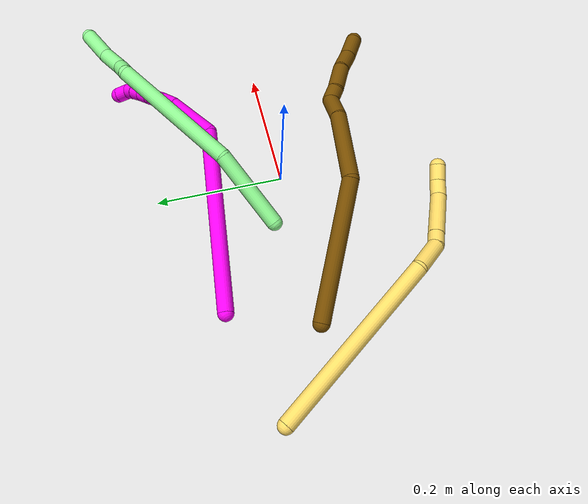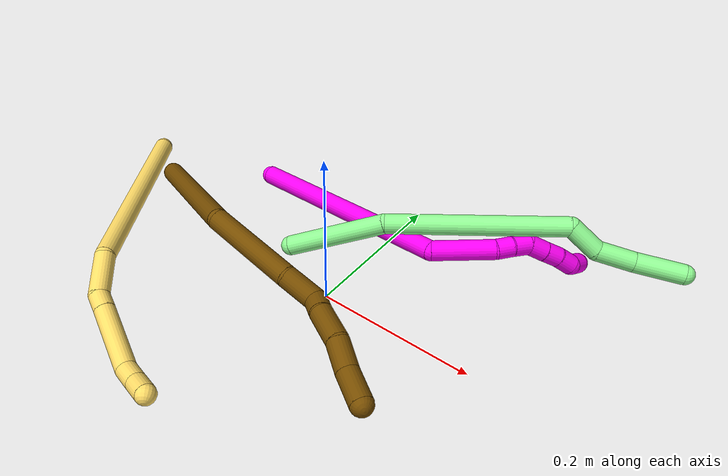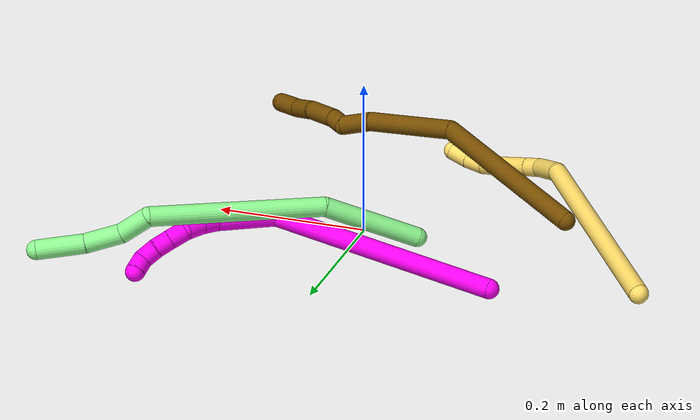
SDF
<sdf version="1.7">
 <world name="default">
  <model name="5">
   <static>0</static>
   <link name="5">
    <collision name="collision-cylinder-e_1_1_4">
     <pose>0.013832 -0.050678 0.135735 0.357334 0.095179 0.017201</pose>
     <geometry><cylinder><radius>0.0125</radius><length>0.291092</length></cylinder></geometry>
     <surface>
      <friction><ode><mu>1.16</mu><mu2>1.16</mu2><slip1>0</slip1><slip2>0</slip2></ode></friction>
      <contact><ode><kp>1e+06</kp><kd>1</kd><max_vel>0</max_vel><min_depth>0.001</min_depth></ode></contact>
     </surface>
    </collision>
    <visual name="visual-cylinder-e_1_1_4">
     <pose>0.013832 -0.050678 0.135735 0.357334 0.095179 0.017201</pose>
     <geometry><cylinder><radius>0.0125</radius><length>0.291092</length></cylinder></geometry>
     <material><ambient>1 0.858824 0.4 1</ambient></material>
    </visual>
    <collision name="collision-cylinder-e_2_4_5">
     <pose>0.026048 -0.100336 0.298481 -0.037768 -0.059733 0.001128</pose>
     <geometry><cylinder><radius>0.0125</radius><length>0.054156</length></cylinder></geometry>
     <surface>
      <friction><ode><mu>1.16</mu><mu2>1.16</mu2><slip1>0</slip1><slip2>0</slip2></ode></friction>
      <contact><ode><kp>1e+06</kp><kd>1</kd><max_vel>0</max_vel><min_depth>0.001</min_depth></ode></contact>
     </surface>
    </collision>
    <visual name="visual-cylinder-e_2_4_5">
     <pose>0.026048 -0.100336 0.298481 -0.037768 -0.059733 0.001128</pose>
     <geometry><cylinder><radius>0.0125</radius><length>0.054156</length></cylinder></geometry>
     <material><ambient>1 0.858824 0.4 1</ambient></material>
    </visual>
    <collision name="collision-cylinder-e_3_5_6">
     <pose>0.019443 -0.099812 0.334869 0.052929 -0.488231 -0.013187</pose>
     <geometry><cylinder><radius>0.0125</radius><length>0.021268</length></cylinder></geometry>
     <surface>
      <friction><ode><mu>1.16</mu><mu2>1.16</mu2><slip1>0</slip1><slip2>0</slip2></ode></friction>
      <contact><ode><kp>1e+06</kp><kd>1</kd><max_vel>0</max_vel><min_depth>0.001</min_depth></ode></contact>
     </surface>
    </collision>
    <visual name="visual-cylinder-e_3_5_6">
     <pose>0.019443 -0.099812 0.334869 0.052929 -0.488231 -0.013187</pose>
     <geometry><cylinder><radius>0.0125</radius><length>0.021268</length></cylinder></geometry>
     <material><ambient>1 0.858824 0.4 1</ambient></material>
    </visual>
    <collision name="collision-cylinder-e_4_6_7">
     <pose>-0.004059 -0.101163 0.380383 0.023634 -0.473371 -0.005701</pose>
     <geometry><cylinder><radius>0.0125</radius><length>0.081223</length></cylinder></geometry>
     <surface>
      <friction><ode><mu>1.16</mu><mu2>1.16</mu2><slip1>0</slip1><slip2>0</slip2></ode></friction>
      <contact><ode><kp>1e+06</kp><kd>1</kd><max_vel>0</max_vel><min_depth>0.001</min_depth></ode></contact>
     </surface>
    </collision>
    <visual name="visual-cylinder-e_4_6_7">
     <pose>-0.004059 -0.101163 0.380383 0.023634 -0.473371 -0.005701</pose>
     <geometry><cylinder><radius>0.0125</radius><length>0.081223</length></cylinder></geometry>
     <material><ambient>1 0.858824 0.4 1</ambient></material>
    </visual>
    <collision name="collision-cylinder-e_5_7_8">
     <pose>-0.029756 -0.107051 0.426151 0.481575 -0.583994 -0.147353</pose>
     <geometry><cylinder><radius>0.0125</radius><length>0.026055</length></cylinder></geometry>
     <surface>
      <friction><ode><mu>1.16</mu><mu2>1.16</mu2><slip1>0</slip1><slip2>0</slip2></ode></friction>
      <contact><ode><kp>1e+06</kp><kd>1</kd><max_vel>0</max_vel><min_depth>0.001</min_depth></ode></contact>
     </surface>
    </collision>
    <visual name="visual-cylinder-e_5_7_8">
     <pose>-0.029756 -0.107051 0.426151 0.481575 -0.583994 -0.147353</pose>
     <geometry><cylinder><radius>0.0125</radius><length>0.026055</length></cylinder></geometry>
     <material><ambient>1 0.858824 0.4 1</ambient></material>
    </visual>
    <collision name="collision-cylinder-e_6_8_2">
     <pose>-0.043441 -0.118714 0.445029 0.621993 -0.519257 -0.170344</pose>
     <geometry><cylinder><radius>0.0125</radius><length>0.026206</length></cylinder></geometry>
     <surface>
      <friction><ode><mu>1.16</mu><mu2>1.16</mu2><slip1>0</slip1><slip2>0</slip2></ode></friction>
      <contact><ode><kp>1e+06</kp><kd>1</kd><max_vel>0</max_vel><min_depth>0.001</min_depth></ode></contact>
     </surface>
    </collision>
    <visual name="visual-cylinder-e_6_8_2">
     <pose>-0.043441 -0.118714 0.445029 0.621993 -0.519257 -0.170344</pose>
     <geometry><cylinder><radius>0.0125</radius><length>0.026206</length></cylinder></geometry>
     <material><ambient>1 0.858824 0.4 1</ambient></material>
    </visual>
    <collision name="collision-sphere-2">
     <pose>-0.049944 -0.125342 0.454274 0 -0 0</pose>
     <geometry><sphere><radius>0.0125</radius></sphere></geometry>
     <surface>
      <friction><ode><mu>1.16</mu><mu2>1.16</mu2><slip1>0</slip1><slip2>0</slip2></ode></friction>
      <contact><ode><kp>1e+06</kp><kd>1</kd><max_vel>0</max_vel><min_depth>0.001</min_depth></ode></contact>
     </surface>
    </collision>
    <visual name="visual-sphere-2">
     <pose>-0.049944 -0.125342 0.454274 0 -0 0</pose>
     <geometry><sphere><radius>0.0125</radius></sphere></geometry>
     <material><ambient>1 0.858824 0.4 1</ambient></material>
    </visual>
    <collision name="collision-sphere-4">
     <pose>0.027664 -0.101357 0.27147 0 -0 0</pose>
     <geometry><sphere><radius>0.0125</radius></sphere></geometry>
     <surface>
      <friction><ode><mu>1.16</mu><mu2>1.16</mu2><slip1>0</slip1><slip2>0</slip2></ode></friction>
      <contact><ode><kp>1e+06</kp><kd>1</kd><max_vel>0</max_vel><min_depth>0.001</min_depth></ode></contact>
     </surface>
    </collision>
    <visual name="visual-sphere-4">
     <pose>0.027664 -0.101357 0.27147 0 -0 0</pose>
     <geometry><sphere><radius>0.0125</radius></sphere></geometry>
     <material><ambient>1 0.858824 0.4 1</ambient></material>
    </visual>
    <collision name="collision-sphere-1">
     <geometry><sphere><radius>0.0125</radius></sphere></geometry>
     <surface>
      <friction><ode><mu>1.16</mu><mu2>1.16</mu2><slip1>0</slip1><slip2>0</slip2></ode></friction>
      <contact><ode><kp>1e+06</kp><kd>1</kd><max_vel>0</max_vel><min_depth>0.001</min_depth></ode></contact>
     </surface>
    </collision>
    <visual name="visual-sphere-1">
     <geometry><sphere><radius>0.0125</radius></sphere></geometry>
     <material><ambient>1 0.858824 0.4 1</ambient></material>
    </visual>
    <collision name="collision-sphere-8">
     <pose>-0.036939 -0.112085 0.435783 0 -0 0</pose>
     <geometry><sphere><radius>0.0125</radius></sphere></geometry>
     <surface>
      <friction><ode><mu>1.16</mu><mu2>1.16</mu2><slip1>0</slip1><slip2>0</slip2></ode></friction>
      <contact><ode><kp>1e+06</kp><kd>1</kd><max_vel>0</max_vel><min_depth>0.001</min_depth></ode></contact>
     </surface>
    </collision>
    <visual name="visual-sphere-8">
     <pose>-0.036939 -0.112085 0.435783 0 -0 0</pose>
     <geometry><sphere><radius>0.0125</radius></sphere></geometry>
     <material><ambient>1 0.858824 0.4 1</ambient></material>
    </visual>
    <collision name="collision-sphere-5">
     <pose>0.024431 -0.099315 0.325491 0 -0 0</pose>
     <geometry><sphere><radius>0.0125</radius></sphere></geometry>
     <surface>
      <friction><ode><mu>1.16</mu><mu2>1.16</mu2><slip1>0</slip1><slip2>0</slip2></ode></friction>
      <contact><ode><kp>1e+06</kp><kd>1</kd><max_vel>0</max_vel><min_depth>0.001</min_depth></ode></contact>
     </surface>
    </collision>
    <visual name="visual-sphere-5">
     <pose>0.024431 -0.099315 0.325491 0 -0 0</pose>
     <geometry><sphere><radius>0.0125</radius></sphere></geometry>
     <material><ambient>1 0.858824 0.4 1</ambient></material>
    </visual>
    <collision name="collision-sphere-6">
     <pose>0.014455 -0.100309 0.344248 0 -0 0</pose>
     <geometry><sphere><radius>0.0125</radius></sphere></geometry>
     <surface>
      <friction><ode><mu>1.16</mu><mu2>1.16</mu2><slip1>0</slip1><slip2>0</slip2></ode></friction>
      <contact><ode><kp>1e+06</kp><kd>1</kd><max_vel>0</max_vel><min_depth>0.001</min_depth></ode></contact>
     </surface>
    </collision>
    <visual name="visual-sphere-6">
     <pose>0.014455 -0.100309 0.344248 0 -0 0</pose>
     <geometry><sphere><radius>0.0125</radius></sphere></geometry>
     <material><ambient>1 0.858824 0.4 1</ambient></material>
    </visual>
    <collision name="collision-sphere-7">
     <pose>-0.022574 -0.102018 0.416519 0 -0 0</pose>
     <geometry><sphere><radius>0.0125</radius></sphere></geometry>
     <surface>
      <friction><ode><mu>1.16</mu><mu2>1.16</mu2><slip1>0</slip1><slip2>0</slip2></ode></friction>
      <contact><ode><kp>1e+06</kp><kd>1</kd><max_vel>0</max_vel><min_depth>0.001</min_depth></ode></contact>
     </surface>
    </collision>
    <visual name="visual-sphere-7">
     <pose>-0.022574 -0.102018 0.416519 0 -0 0</pose>
     <geometry><sphere><radius>0.0125</radius></sphere></geometry>
     <material><ambient>1 0.858824 0.4 1</ambient></material>
    </visual>
    <inertial>
     <pose>0.007214 -0.072851 0.232919 0 -0 0</pose>
     <mass>0.5</mass>
     <inertia>
      <ixx>0.002151</ixx>
      <ixy>0</ixy>
      <ixz>0</ixz>
      <iyy>0.002031</iyy>
      <iyz>0</iyz>
      <izz>0.000588</izz>
     </inertia>
    </inertial>
   </link>
   <pose>-0.381298 0.086872 0.011658 -1.80239 -0.169087 -2.46111</pose>
  </model>
  <model name="10">
   <static>0</static>
   <link name="10">
    <collision name="collision-cylinder-e_1_1_4">
     <pose>-0.051281 -0.03476 0.133468 0.254779 -0.355977 -0.046074</pose>
     <geometry><cylinder><radius>0.0125</radius><length>0.29429</length></cylinder></geometry>
     <surface>
      <friction><ode><mu>1.16</mu><mu2>1.16</mu2><slip1>0</slip1><slip2>0</slip2></ode></friction>
      <contact><ode><kp>1e+06</kp><kd>1</kd><max_vel>0</max_vel><min_depth>0.001</min_depth></ode></contact>
     </surface>
    </collision>
    <visual name="visual-cylinder-e_1_1_4">
     <pose>-0.051281 -0.03476 0.133468 0.254779 -0.355977 -0.046074</pose>
     <geometry><cylinder><radius>0.0125</radius><length>0.29429</length></cylinder></geometry>
     <material><ambient>1 0 0.964706 1</ambient></material>
    </visual>
    <collision name="collision-cylinder-e_2_4_5">
     <pose>-0.107672 -0.051324 0.300692 -0.494389 -0.132482 0.033478</pose>
     <geometry><cylinder><radius>0.0125</radius><length>0.077375</length></cylinder></geometry>
     <surface>
      <friction><ode><mu>1.16</mu><mu2>1.16</mu2><slip1>0</slip1><slip2>0</slip2></ode></friction>
      <contact><ode><kp>1e+06</kp><kd>1</kd><max_vel>0</max_vel><min_depth>0.001</min_depth></ode></contact>
     </surface>
    </collision>
    <visual name="visual-cylinder-e_2_4_5">
     <pose>-0.107672 -0.051324 0.300692 -0.494389 -0.132482 0.033478</pose>
     <geometry><cylinder><radius>0.0125</radius><length>0.077375</length></cylinder></geometry>
     <material><ambient>1 0 0.964706 1</ambient></material>
    </visual>
    <collision name="collision-cylinder-e_3_5_6">
     <pose>-0.113274 -0.026139 0.342199 -0.733767 -0.047047 0.018082</pose>
     <geometry><cylinder><radius>0.0125</radius><length>0.020895</length></cylinder></geometry>
     <surface>
      <friction><ode><mu>1.16</mu><mu2>1.16</mu2><slip1>0</slip1><slip2>0</slip2></ode></friction>
      <contact><ode><kp>1e+06</kp><kd>1</kd><max_vel>0</max_vel><min_depth>0.001</min_depth></ode></contact>
     </surface>
    </collision>
    <visual name="visual-cylinder-e_3_5_6">
     <pose>-0.113274 -0.026139 0.342199 -0.733767 -0.047047 0.018082</pose>
     <geometry><cylinder><radius>0.0125</radius><length>0.020895</length></cylinder></geometry>
     <material><ambient>1 0 0.964706 1</ambient></material>
    </visual>
    <collision name="collision-cylinder-e_4_6_7">
     <pose>-0.112895 -0.011446 0.357915 -0.768696 0.078358 -0.031706</pose>
     <geometry><cylinder><radius>0.0125</radius><length>0.022233</length></cylinder></geometry>
     <surface>
      <friction><ode><mu>1.16</mu><mu2>1.16</mu2><slip1>0</slip1><slip2>0</slip2></ode></friction>
      <contact><ode><kp>1e+06</kp><kd>1</kd><max_vel>0</max_vel><min_depth>0.001</min_depth></ode></contact>
     </surface>
    </collision>
    <visual name="visual-cylinder-e_4_6_7">
     <pose>-0.112895 -0.011446 0.357915 -0.768696 0.078358 -0.031706</pose>
     <geometry><cylinder><radius>0.0125</radius><length>0.022233</length></cylinder></geometry>
     <material><ambient>1 0 0.964706 1</ambient></material>
    </visual>
    <collision name="collision-cylinder-e_5_7_8">
     <pose>-0.108065 -0.000316 0.375837 -0.331427 0.359746 -0.060805</pose>
     <geometry><cylinder><radius>0.0125</radius><length>0.022497</length></cylinder></geometry>
     <surface>
      <friction><ode><mu>1.16</mu><mu2>1.16</mu2><slip1>0</slip1><slip2>0</slip2></ode></friction>
      <contact><ode><kp>1e+06</kp><kd>1</kd><max_vel>0</max_vel><min_depth>0.001</min_depth></ode></contact>
     </surface>
    </collision>
    <visual name="visual-cylinder-e_5_7_8">
     <pose>-0.108065 -0.000316 0.375837 -0.331427 0.359746 -0.060805</pose>
     <geometry><cylinder><radius>0.0125</radius><length>0.022497</length></cylinder></geometry>
     <material><ambient>1 0 0.964706 1</ambient></material>
    </visual>
    <collision name="collision-cylinder-e_6_8_9">
     <pose>-0.100305 0.006721 0.394635 -0.387668 0.378667 -0.075198</pose>
     <geometry><cylinder><radius>0.0125</radius><length>0.020559</length></cylinder></geometry>
     <surface>
      <friction><ode><mu>1.16</mu><mu2>1.16</mu2><slip1>0</slip1><slip2>0</slip2></ode></friction>
      <contact><ode><kp>1e+06</kp><kd>1</kd><max_vel>0</max_vel><min_depth>0.001</min_depth></ode></contact>
     </surface>
    </collision>
    <visual name="visual-cylinder-e_6_8_9">
     <pose>-0.100305 0.006721 0.394635 -0.387668 0.378667 -0.075198</pose>
     <geometry><cylinder><radius>0.0125</radius><length>0.020559</length></cylinder></geometry>
     <material><ambient>1 0 0.964706 1</ambient></material>
    </visual>
    <collision name="collision-cylinder-e_7_9_10">
     <pose>-0.091108 0.013363 0.412369 -0.328563 0.521467 -0.088403</pose>
     <geometry><cylinder><radius>0.0125</radius><length>0.021669</length></cylinder></geometry>
     <surface>
      <friction><ode><mu>1.16</mu><mu2>1.16</mu2><slip1>0</slip1><slip2>0</slip2></ode></friction>
      <contact><ode><kp>1e+06</kp><kd>1</kd><max_vel>0</max_vel><min_depth>0.001</min_depth></ode></contact>
     </surface>
    </collision>
    <visual name="visual-cylinder-e_7_9_10">
     <pose>-0.091108 0.013363 0.412369 -0.328563 0.521467 -0.088403</pose>
     <geometry><cylinder><radius>0.0125</radius><length>0.021669</length></cylinder></geometry>
     <material><ambient>1 0 0.964706 1</ambient></material>
    </visual>
    <collision name="collision-cylinder-e_8_10_2">
     <pose>-0.08036 0.024349 0.424862 -1.14574 0.549728 -0.359861</pose>
     <geometry><cylinder><radius>0.0125</radius><length>0.020483</length></cylinder></geometry>
     <surface>
      <friction><ode><mu>1.16</mu><mu2>1.16</mu2><slip1>0</slip1><slip2>0</slip2></ode></friction>
      <contact><ode><kp>1e+06</kp><kd>1</kd><max_vel>0</max_vel><min_depth>0.001</min_depth></ode></contact>
     </surface>
    </collision>
    <visual name="visual-cylinder-e_8_10_2">
     <pose>-0.08036 0.024349 0.424862 -1.14574 0.549728 -0.359861</pose>
     <geometry><cylinder><radius>0.0125</radius><length>0.020483</length></cylinder></geometry>
     <material><ambient>1 0 0.964706 1</ambient></material>
    </visual>
    <collision name="collision-sphere-2">
     <pose>-0.07501 0.032305 0.428463 0 -0 0</pose>
     <geometry><sphere><radius>0.0125</radius></sphere></geometry>
     <surface>
      <friction><ode><mu>1.16</mu><mu2>1.16</mu2><slip1>0</slip1><slip2>0</slip2></ode></friction>
      <contact><ode><kp>1e+06</kp><kd>1</kd><max_vel>0</max_vel><min_depth>0.001</min_depth></ode></contact>
     </surface>
    </collision>
    <visual name="visual-sphere-2">
     <pose>-0.07501 0.032305 0.428463 0 -0 0</pose>
     <geometry><sphere><radius>0.0125</radius></sphere></geometry>
     <material><ambient>1 0 0.964706 1</ambient></material>
    </visual>
    <collision name="collision-sphere-10">
     <pose>-0.085711 0.016394 0.421261 0 -0 0</pose>
     <geometry><sphere><radius>0.0125</radius></sphere></geometry>
     <surface>
      <friction><ode><mu>1.16</mu><mu2>1.16</mu2><slip1>0</slip1><slip2>0</slip2></ode></friction>
      <contact><ode><kp>1e+06</kp><kd>1</kd><max_vel>0</max_vel><min_depth>0.001</min_depth></ode></contact>
     </surface>
    </collision>
    <visual name="visual-sphere-10">
     <pose>-0.085711 0.016394 0.421261 0 -0 0</pose>
     <geometry><sphere><radius>0.0125</radius></sphere></geometry>
     <material><ambient>1 0 0.964706 1</ambient></material>
    </visual>
    <collision name="collision-sphere-9">
     <pose>-0.096505 0.010331 0.403478 0 -0 0</pose>
     <geometry><sphere><radius>0.0125</radius></sphere></geometry>
     <surface>
      <friction><ode><mu>1.16</mu><mu2>1.16</mu2><slip1>0</slip1><slip2>0</slip2></ode></friction>
      <contact><ode><kp>1e+06</kp><kd>1</kd><max_vel>0</max_vel><min_depth>0.001</min_depth></ode></contact>
     </surface>
    </collision>
    <visual name="visual-sphere-9">
     <pose>-0.096505 0.010331 0.403478 0 -0 0</pose>
     <geometry><sphere><radius>0.0125</radius></sphere></geometry>
     <material><ambient>1 0 0.964706 1</ambient></material>
    </visual>
    <collision name="collision-sphere-4">
     <pose>-0.102562 -0.06952 0.266935 0 -0 0</pose>
     <geometry><sphere><radius>0.0125</radius></sphere></geometry>
     <surface>
      <friction><ode><mu>1.16</mu><mu2>1.16</mu2><slip1>0</slip1><slip2>0</slip2></ode></friction>
      <contact><ode><kp>1e+06</kp><kd>1</kd><max_vel>0</max_vel><min_depth>0.001</min_depth></ode></contact>
     </surface>
    </collision>
    <visual name="visual-sphere-4">
     <pose>-0.102562 -0.06952 0.266935 0 -0 0</pose>
     <geometry><sphere><radius>0.0125</radius></sphere></geometry>
     <material><ambient>1 0 0.964706 1</ambient></material>
    </visual>
    <collision name="collision-sphere-1">
     <geometry><sphere><radius>0.0125</radius></sphere></geometry>
     <surface>
      <friction><ode><mu>1.16</mu><mu2>1.16</mu2><slip1>0</slip1><slip2>0</slip2></ode></friction>
      <contact><ode><kp>1e+06</kp><kd>1</kd><max_vel>0</max_vel><min_depth>0.001</min_depth></ode></contact>
     </surface>
    </collision>
    <visual name="visual-sphere-1">
     <geometry><sphere><radius>0.0125</radius></sphere></geometry>
     <material><ambient>1 0 0.964706 1</ambient></material>
    </visual>
    <collision name="collision-sphere-8">
     <pose>-0.104105 0.00311 0.385792 0 -0 0</pose>
     <geometry><sphere><radius>0.0125</radius></sphere></geometry>
     <surface>
      <friction><ode><mu>1.16</mu><mu2>1.16</mu2><slip1>0</slip1><slip2>0</slip2></ode></friction>
      <contact><ode><kp>1e+06</kp><kd>1</kd><max_vel>0</max_vel><min_depth>0.001</min_depth></ode></contact>
     </surface>
    </collision>
    <visual name="visual-sphere-8">
     <pose>-0.104105 0.00311 0.385792 0 -0 0</pose>
     <geometry><sphere><radius>0.0125</radius></sphere></geometry>
     <material><ambient>1 0 0.964706 1</ambient></material>
    </visual>
    <collision name="collision-sphere-5">
     <pose>-0.112783 -0.033128 0.334448 0 -0 0</pose>
     <geometry><sphere><radius>0.0125</radius></sphere></geometry>
     <surface>
      <friction><ode><mu>1.16</mu><mu2>1.16</mu2><slip1>0</slip1><slip2>0</slip2></ode></friction>
      <contact><ode><kp>1e+06</kp><kd>1</kd><max_vel>0</max_vel><min_depth>0.001</min_depth></ode></contact>
     </surface>
    </collision>
    <visual name="visual-sphere-5">
     <pose>-0.112783 -0.033128 0.334448 0 -0 0</pose>
     <geometry><sphere><radius>0.0125</radius></sphere></geometry>
     <material><ambient>1 0 0.964706 1</ambient></material>
    </visual>
    <collision name="collision-sphere-6">
     <pose>-0.113765 -0.019151 0.349949 0 -0 0</pose>
     <geometry><sphere><radius>0.0125</radius></sphere></geometry>
     <surface>
      <friction><ode><mu>1.16</mu><mu2>1.16</mu2><slip1>0</slip1><slip2>0</slip2></ode></friction>
      <contact><ode><kp>1e+06</kp><kd>1</kd><max_vel>0</max_vel><min_depth>0.001</min_depth></ode></contact>
     </surface>
    </collision>
    <visual name="visual-sphere-6">
     <pose>-0.113765 -0.019151 0.349949 0 -0 0</pose>
     <geometry><sphere><radius>0.0125</radius></sphere></geometry>
     <material><ambient>1 0 0.964706 1</ambient></material>
    </visual>
    <collision name="collision-sphere-7">
     <pose>-0.112025 -0.003742 0.365882 0 -0 0</pose>
     <geometry><sphere><radius>0.0125</radius></sphere></geometry>
     <surface>
      <friction><ode><mu>1.16</mu><mu2>1.16</mu2><slip1>0</slip1><slip2>0</slip2></ode></friction>
      <contact><ode><kp>1e+06</kp><kd>1</kd><max_vel>0</max_vel><min_depth>0.001</min_depth></ode></contact>
     </surface>
    </collision>
    <visual name="visual-sphere-7">
     <pose>-0.112025 -0.003742 0.365882 0 -0 0</pose>
     <geometry><sphere><radius>0.0125</radius></sphere></geometry>
     <material><ambient>1 0 0.964706 1</ambient></material>
    </visual>
    <inertial>
     <pose>-0.072826 -0.028164 0.223716 0 -0 0</pose>
     <mass>0.5</mass>
     <inertia>
      <ixx>0.001952</ixx>
      <ixy>0</ixy>
      <ixz>0</ixz>
      <iyy>0.002029</iyy>
      <iyz>0</iyz>
      <izz>0.00126</izz>
     </inertia>
    </inertial>
   </link>
   <pose>-0.207325 0.133225 0.011521 2.38 1.3163 2.54621</pose>
  </model>
  <model name="12">
   <static>0</static>
   <link name="12">
    <collision name="collision-cylinder-e_1_1_4">
     <pose>0.000955 -0.024065 0.100835 0.234273 0.009207 0.001083</pose>
     <geometry><cylinder><radius>0.0125</radius><length>0.207343</length></cylinder></geometry>
     <surface>
      <friction><ode><mu>1.16</mu><mu2>1.16</mu2><slip1>0</slip1><slip2>0</slip2></ode></friction>
      <contact><ode><kp>1e+06</kp><kd>1</kd><max_vel>0</max_vel><min_depth>0.001</min_depth></ode></contact>
     </surface>
    </collision>
    <visual name="visual-cylinder-e_1_1_4">
     <pose>0.000955 -0.024065 0.100835 0.234273 0.009207 0.001083</pose>
     <geometry><cylinder><radius>0.0125</radius><length>0.207343</length></cylinder></geometry>
     <material><ambient>0.466667 0.301961 0 1</ambient></material>
    </visual>
    <collision name="collision-cylinder-e_2_4_5">
     <pose>-0.015547 -0.080969 0.245972 0.637891 -0.30657 -0.101948</pose>
     <geometry><cylinder><radius>0.0125</radius><length>0.115684</length></cylinder></geometry>
     <surface>
      <friction><ode><mu>1.16</mu><mu2>1.16</mu2><slip1>0</slip1><slip2>0</slip2></ode></friction>
      <contact><ode><kp>1e+06</kp><kd>1</kd><max_vel>0</max_vel><min_depth>0.001</min_depth></ode></contact>
     </surface>
    </collision>
    <visual name="visual-cylinder-e_2_4_5">
     <pose>-0.015547 -0.080969 0.245972 0.637891 -0.30657 -0.101948</pose>
     <geometry><cylinder><radius>0.0125</radius><length>0.115684</length></cylinder></geometry>
     <material><ambient>0.466667 0.301961 0 1</ambient></material>
    </visual>
    <collision name="collision-cylinder-e_3_5_6">
     <pose>-0.041627 -0.12734 0.302475 0.837031 -0.442055 -0.199227</pose>
     <geometry><cylinder><radius>0.0125</radius><length>0.040318</length></cylinder></geometry>
     <surface>
      <friction><ode><mu>1.16</mu><mu2>1.16</mu2><slip1>0</slip1><slip2>0</slip2></ode></friction>
      <contact><ode><kp>1e+06</kp><kd>1</kd><max_vel>0</max_vel><min_depth>0.001</min_depth></ode></contact>
     </surface>
    </collision>
    <visual name="visual-cylinder-e_3_5_6">
     <pose>-0.041627 -0.12734 0.302475 0.837031 -0.442055 -0.199227</pose>
     <geometry><cylinder><radius>0.0125</radius><length>0.040318</length></cylinder></geometry>
     <material><ambient>0.466667 0.301961 0 1</ambient></material>
    </visual>
    <collision name="collision-cylinder-e_4_6_7">
     <pose>-0.05232 -0.14184 0.325438 0.089706 -0.189226 -0.008518</pose>
     <geometry><cylinder><radius>0.0125</radius><length>0.022001</length></cylinder></geometry>
     <surface>
      <friction><ode><mu>1.16</mu><mu2>1.16</mu2><slip1>0</slip1><slip2>0</slip2></ode></friction>
      <contact><ode><kp>1e+06</kp><kd>1</kd><max_vel>0</max_vel><min_depth>0.001</min_depth></ode></contact>
     </surface>
    </collision>
    <visual name="visual-cylinder-e_4_6_7">
     <pose>-0.05232 -0.14184 0.325438 0.089706 -0.189226 -0.008518</pose>
     <geometry><cylinder><radius>0.0125</radius><length>0.022001</length></cylinder></geometry>
     <material><ambient>0.466667 0.301961 0 1</ambient></material>
    </visual>
    <collision name="collision-cylinder-e_5_7_8">
     <pose>-0.061144 -0.147985 0.355278 0.26498 -0.329196 -0.044265</pose>
     <geometry><cylinder><radius>0.0125</radius><length>0.041784</length></cylinder></geometry>
     <surface>
      <friction><ode><mu>1.16</mu><mu2>1.16</mu2><slip1>0</slip1><slip2>0</slip2></ode></friction>
      <contact><ode><kp>1e+06</kp><kd>1</kd><max_vel>0</max_vel><min_depth>0.001</min_depth></ode></contact>
     </surface>
    </collision>
    <visual name="visual-cylinder-e_5_7_8">
     <pose>-0.061144 -0.147985 0.355278 0.26498 -0.329196 -0.044265</pose>
     <geometry><cylinder><radius>0.0125</radius><length>0.041784</length></cylinder></geometry>
     <material><ambient>0.466667 0.301961 0 1</ambient></material>
    </visual>
    <collision name="collision-cylinder-e_6_8_9">
     <pose>-0.077093 -0.155549 0.388932 0.16226 -0.556906 -0.046481</pose>
     <geometry><cylinder><radius>0.0125</radius><length>0.034793</length></cylinder></geometry>
     <surface>
      <friction><ode><mu>1.16</mu><mu2>1.16</mu2><slip1>0</slip1><slip2>0</slip2></ode></friction>
      <contact><ode><kp>1e+06</kp><kd>1</kd><max_vel>0</max_vel><min_depth>0.001</min_depth></ode></contact>
     </surface>
    </collision>
    <visual name="visual-cylinder-e_6_8_9">
     <pose>-0.077093 -0.155549 0.388932 0.16226 -0.556906 -0.046481</pose>
     <geometry><cylinder><radius>0.0125</radius><length>0.034793</length></cylinder></geometry>
     <material><ambient>0.466667 0.301961 0 1</ambient></material>
    </visual>
    <collision name="collision-cylinder-e_7_9_2">
     <pose>-0.093799 -0.161369 0.42066 0.197597 -0.40557 -0.040755</pose>
     <geometry><cylinder><radius>0.0125</radius><length>0.038077</length></cylinder></geometry>
     <surface>
      <friction><ode><mu>1.16</mu><mu2>1.16</mu2><slip1>0</slip1><slip2>0</slip2></ode></friction>
      <contact><ode><kp>1e+06</kp><kd>1</kd><max_vel>0</max_vel><min_depth>0.001</min_depth></ode></contact>
     </surface>
    </collision>
    <visual name="visual-cylinder-e_7_9_2">
     <pose>-0.093799 -0.161369 0.42066 0.197597 -0.40557 -0.040755</pose>
     <geometry><cylinder><radius>0.0125</radius><length>0.038077</length></cylinder></geometry>
     <material><ambient>0.466667 0.301961 0 1</ambient></material>
    </visual>
    <collision name="collision-sphere-2">
     <pose>-0.101311 -0.164803 0.437813 0 -0 0</pose>
     <geometry><sphere><radius>0.0125</radius></sphere></geometry>
     <surface>
      <friction><ode><mu>1.16</mu><mu2>1.16</mu2><slip1>0</slip1><slip2>0</slip2></ode></friction>
      <contact><ode><kp>1e+06</kp><kd>1</kd><max_vel>0</max_vel><min_depth>0.001</min_depth></ode></contact>
     </surface>
    </collision>
    <visual name="visual-sphere-2">
     <pose>-0.101311 -0.164803 0.437813 0 -0 0</pose>
     <geometry><sphere><radius>0.0125</radius></sphere></geometry>
     <material><ambient>0.466667 0.301961 0 1</ambient></material>
    </visual>
    <collision name="collision-sphere-9">
     <pose>-0.086288 -0.157934 0.403506 0 -0 0</pose>
     <geometry><sphere><radius>0.0125</radius></sphere></geometry>
     <surface>
      <friction><ode><mu>1.16</mu><mu2>1.16</mu2><slip1>0</slip1><slip2>0</slip2></ode></friction>
      <contact><ode><kp>1e+06</kp><kd>1</kd><max_vel>0</max_vel><min_depth>0.001</min_depth></ode></contact>
     </surface>
    </collision>
    <visual name="visual-sphere-9">
     <pose>-0.086288 -0.157934 0.403506 0 -0 0</pose>
     <geometry><sphere><radius>0.0125</radius></sphere></geometry>
     <material><ambient>0.466667 0.301961 0 1</ambient></material>
    </visual>
    <collision name="collision-sphere-4">
     <pose>0.001909 -0.04813 0.201671 0 -0 0</pose>
     <geometry><sphere><radius>0.0125</radius></sphere></geometry>
     <surface>
      <friction><ode><mu>1.16</mu><mu2>1.16</mu2><slip1>0</slip1><slip2>0</slip2></ode></friction>
      <contact><ode><kp>1e+06</kp><kd>1</kd><max_vel>0</max_vel><min_depth>0.001</min_depth></ode></contact>
     </surface>
    </collision>
    <visual name="visual-sphere-4">
     <pose>0.001909 -0.04813 0.201671 0 -0 0</pose>
     <geometry><sphere><radius>0.0125</radius></sphere></geometry>
     <material><ambient>0.466667 0.301961 0 1</ambient></material>
    </visual>
    <collision name="collision-sphere-1">
     <geometry><sphere><radius>0.0125</radius></sphere></geometry>
     <surface>
      <friction><ode><mu>1.16</mu><mu2>1.16</mu2><slip1>0</slip1><slip2>0</slip2></ode></friction>
      <contact><ode><kp>1e+06</kp><kd>1</kd><max_vel>0</max_vel><min_depth>0.001</min_depth></ode></contact>
     </surface>
    </collision>
    <visual name="visual-sphere-1">
     <geometry><sphere><radius>0.0125</radius></sphere></geometry>
     <material><ambient>0.466667 0.301961 0 1</ambient></material>
    </visual>
    <collision name="collision-sphere-8">
     <pose>-0.067897 -0.153163 0.374358 0 -0 0</pose>
     <geometry><sphere><radius>0.0125</radius></sphere></geometry>
     <surface>
      <friction><ode><mu>1.16</mu><mu2>1.16</mu2><slip1>0</slip1><slip2>0</slip2></ode></friction>
      <contact><ode><kp>1e+06</kp><kd>1</kd><max_vel>0</max_vel><min_depth>0.001</min_depth></ode></contact>
     </surface>
    </collision>
    <visual name="visual-sphere-8">
     <pose>-0.067897 -0.153163 0.374358 0 -0 0</pose>
     <geometry><sphere><radius>0.0125</radius></sphere></geometry>
     <material><ambient>0.466667 0.301961 0 1</ambient></material>
    </visual>
    <collision name="collision-sphere-5">
     <pose>-0.033003 -0.113808 0.290272 0 -0 0</pose>
     <geometry><sphere><radius>0.0125</radius></sphere></geometry>
     <surface>
      <friction><ode><mu>1.16</mu><mu2>1.16</mu2><slip1>0</slip1><slip2>0</slip2></ode></friction>
      <contact><ode><kp>1e+06</kp><kd>1</kd><max_vel>0</max_vel><min_depth>0.001</min_depth></ode></contact>
     </surface>
    </collision>
    <visual name="visual-sphere-5">
     <pose>-0.033003 -0.113808 0.290272 0 -0 0</pose>
     <geometry><sphere><radius>0.0125</radius></sphere></geometry>
     <material><ambient>0.466667 0.301961 0 1</ambient></material>
    </visual>
    <collision name="collision-sphere-6">
     <pose>-0.050251 -0.140872 0.314677 0 -0 0</pose>
     <geometry><sphere><radius>0.0125</radius></sphere></geometry>
     <surface>
      <friction><ode><mu>1.16</mu><mu2>1.16</mu2><slip1>0</slip1><slip2>0</slip2></ode></friction>
      <contact><ode><kp>1e+06</kp><kd>1</kd><max_vel>0</max_vel><min_depth>0.001</min_depth></ode></contact>
     </surface>
    </collision>
    <visual name="visual-sphere-6">
     <pose>-0.050251 -0.140872 0.314677 0 -0 0</pose>
     <geometry><sphere><radius>0.0125</radius></sphere></geometry>
     <material><ambient>0.466667 0.301961 0 1</ambient></material>
    </visual>
    <collision name="collision-sphere-7">
     <pose>-0.05439 -0.142808 0.336198 0 -0 0</pose>
     <geometry><sphere><radius>0.0125</radius></sphere></geometry>
     <surface>
      <friction><ode><mu>1.16</mu><mu2>1.16</mu2><slip1>0</slip1><slip2>0</slip2></ode></friction>
      <contact><ode><kp>1e+06</kp><kd>1</kd><max_vel>0</max_vel><min_depth>0.001</min_depth></ode></contact>
     </surface>
    </collision>
    <visual name="visual-sphere-7">
     <pose>-0.05439 -0.142808 0.336198 0 -0 0</pose>
     <geometry><sphere><radius>0.0125</radius></sphere></geometry>
     <material><ambient>0.466667 0.301961 0 1</ambient></material>
    </visual>
    <inertial>
     <pose>-0.026478 -0.080702 0.226224 0 -0 0</pose>
     <mass>0.5</mass>
     <inertia>
      <ixx>0.00088</ixx>
      <ixy>0</ixy>
      <ixz>0</ixz>
      <iyy>0.000838</iyy>
      <iyz>0</iyz>
      <izz>0.000337</izz>
     </inertia>
    </inertial>
   </link>
   <pose>-0.269004 0.010425 0.058813 0.274624 -1.21679 2.1485</pose>
  </model>
  <model name="13">
   <static>0</static>
   <link name="13">
    <collision name="collision-cylinder-e_1_1_4">
     <pose>0.017164 0.006213 0.061719 -0.100335 0.269946 -0.013637</pose>
     <geometry><cylinder><radius>0.0125</radius><length>0.128723</length></cylinder></geometry>
     <surface>
      <friction><ode><mu>1.16</mu><mu2>1.16</mu2><slip1>0</slip1><slip2>0</slip2></ode></friction>
      <contact><ode><kp>1e+06</kp><kd>1</kd><max_vel>0</max_vel><min_depth>0.001</min_depth></ode></contact>
     </surface>
    </collision>
    <visual name="visual-cylinder-e_1_1_4">
     <pose>0.017164 0.006213 0.061719 -0.100335 0.269946 -0.013637</pose>
     <geometry><cylinder><radius>0.0125</radius><length>0.128723</length></cylinder></geometry>
     <material><ambient>0.564706 0.984314 0.572549 1</ambient></material>
    </visual>
    <collision name="collision-cylinder-e_2_4_5">
     <pose>0.030823 -0.000217 0.233703 0.114172 -0.031569 -0.001804</pose>
     <geometry><cylinder><radius>0.0125</radius><length>0.222087</length></cylinder></geometry>
     <surface>
      <friction><ode><mu>1.16</mu><mu2>1.16</mu2><slip1>0</slip1><slip2>0</slip2></ode></friction>
      <contact><ode><kp>1e+06</kp><kd>1</kd><max_vel>0</max_vel><min_depth>0.001</min_depth></ode></contact>
     </surface>
    </collision>
    <visual name="visual-cylinder-e_2_4_5">
     <pose>0.030823 -0.000217 0.233703 0.114172 -0.031569 -0.001804</pose>
     <geometry><cylinder><radius>0.0125</radius><length>0.222087</length></cylinder></geometry>
     <material><ambient>0.564706 0.984314 0.572549 1</ambient></material>
    </visual>
    <collision name="collision-cylinder-e_3_5_6">
     <pose>0.012531 -0.01425 0.358948 0.092416 -0.776814 -0.037839</pose>
     <geometry><cylinder><radius>0.0125</radius><length>0.042187</length></cylinder></geometry>
     <surface>
      <friction><ode><mu>1.16</mu><mu2>1.16</mu2><slip1>0</slip1><slip2>0</slip2></ode></friction>
      <contact><ode><kp>1e+06</kp><kd>1</kd><max_vel>0</max_vel><min_depth>0.001</min_depth></ode></contact>
     </surface>
    </collision>
    <visual name="visual-cylinder-e_3_5_6">
     <pose>0.012531 -0.01425 0.358948 0.092416 -0.776814 -0.037839</pose>
     <geometry><cylinder><radius>0.0125</radius><length>0.042187</length></cylinder></geometry>
     <material><ambient>0.564706 0.984314 0.572549 1</ambient></material>
    </visual>
    <collision name="collision-cylinder-e_4_6_7">
     <pose>-0.009806 -0.018606 0.39576 0.135082 -0.330116 -0.022534</pose>
     <geometry><cylinder><radius>0.0125</radius><length>0.046585</length></cylinder></geometry>
     <surface>
      <friction><ode><mu>1.16</mu><mu2>1.16</mu2><slip1>0</slip1><slip2>0</slip2></ode></friction>
      <contact><ode><kp>1e+06</kp><kd>1</kd><max_vel>0</max_vel><min_depth>0.001</min_depth></ode></contact>
     </surface>
    </collision>
    <visual name="visual-cylinder-e_4_6_7">
     <pose>-0.009806 -0.018606 0.39576 0.135082 -0.330116 -0.022534</pose>
     <geometry><cylinder><radius>0.0125</radius><length>0.046585</length></cylinder></geometry>
     <material><ambient>0.564706 0.984314 0.572549 1</ambient></material>
    </visual>
    <collision name="collision-cylinder-e_5_7_2">
     <pose>-0.024629 -0.022172 0.446908 0.020442 -0.243146 -0.002498</pose>
     <geometry><cylinder><radius>0.0125</radius><length>0.060417</length></cylinder></geometry>
     <surface>
      <friction><ode><mu>1.16</mu><mu2>1.16</mu2><slip1>0</slip1><slip2>0</slip2></ode></friction>
      <contact><ode><kp>1e+06</kp><kd>1</kd><max_vel>0</max_vel><min_depth>0.001</min_depth></ode></contact>
     </surface>
    </collision>
    <visual name="visual-cylinder-e_5_7_2">
     <pose>-0.024629 -0.022172 0.446908 0.020442 -0.243146 -0.002498</pose>
     <geometry><cylinder><radius>0.0125</radius><length>0.060417</length></cylinder></geometry>
     <material><ambient>0.564706 0.984314 0.572549 1</ambient></material>
    </visual>
    <collision name="collision-sphere-2">
     <pose>-0.031902 -0.022772 0.476222 0 -0 0</pose>
     <geometry><sphere><radius>0.0125</radius></sphere></geometry>
     <surface>
      <friction><ode><mu>1.16</mu><mu2>1.16</mu2><slip1>0</slip1><slip2>0</slip2></ode></friction>
      <contact><ode><kp>1e+06</kp><kd>1</kd><max_vel>0</max_vel><min_depth>0.001</min_depth></ode></contact>
     </surface>
    </collision>
    <visual name="visual-sphere-2">
     <pose>-0.031902 -0.022772 0.476222 0 -0 0</pose>
     <geometry><sphere><radius>0.0125</radius></sphere></geometry>
     <material><ambient>0.564706 0.984314 0.572549 1</ambient></material>
    </visual>
    <collision name="collision-sphere-7">
     <pose>-0.017356 -0.021573 0.417594 0 -0 0</pose>
     <geometry><sphere><radius>0.0125</radius></sphere></geometry>
     <surface>
      <friction><ode><mu>1.16</mu><mu2>1.16</mu2><slip1>0</slip1><slip2>0</slip2></ode></friction>
      <contact><ode><kp>1e+06</kp><kd>1</kd><max_vel>0</max_vel><min_depth>0.001</min_depth></ode></contact>
     </surface>
    </collision>
    <visual name="visual-sphere-7">
     <pose>-0.017356 -0.021573 0.417594 0 -0 0</pose>
     <geometry><sphere><radius>0.0125</radius></sphere></geometry>
     <material><ambient>0.564706 0.984314 0.572549 1</ambient></material>
    </visual>
    <collision name="collision-sphere-6">
     <pose>-0.002256 -0.015638 0.373926 0 -0 0</pose>
     <geometry><sphere><radius>0.0125</radius></sphere></geometry>
     <surface>
      <friction><ode><mu>1.16</mu><mu2>1.16</mu2><slip1>0</slip1><slip2>0</slip2></ode></friction>
      <contact><ode><kp>1e+06</kp><kd>1</kd><max_vel>0</max_vel><min_depth>0.001</min_depth></ode></contact>
     </surface>
    </collision>
    <visual name="visual-sphere-6">
     <pose>-0.002256 -0.015638 0.373926 0 -0 0</pose>
     <geometry><sphere><radius>0.0125</radius></sphere></geometry>
     <material><ambient>0.564706 0.984314 0.572549 1</ambient></material>
    </visual>
    <collision name="collision-sphere-5">
     <pose>0.027318 -0.012862 0.343969 0 -0 0</pose>
     <geometry><sphere><radius>0.0125</radius></sphere></geometry>
     <surface>
      <friction><ode><mu>1.16</mu><mu2>1.16</mu2><slip1>0</slip1><slip2>0</slip2></ode></friction>
      <contact><ode><kp>1e+06</kp><kd>1</kd><max_vel>0</max_vel><min_depth>0.001</min_depth></ode></contact>
     </surface>
    </collision>
    <visual name="visual-sphere-5">
     <pose>0.027318 -0.012862 0.343969 0 -0 0</pose>
     <geometry><sphere><radius>0.0125</radius></sphere></geometry>
     <material><ambient>0.564706 0.984314 0.572549 1</ambient></material>
    </visual>
    <collision name="collision-sphere-1">
     <geometry><sphere><radius>0.0125</radius></sphere></geometry>
     <surface>
      <friction><ode><mu>1.16</mu><mu2>1.16</mu2><slip1>0</slip1><slip2>0</slip2></ode></friction>
      <contact><ode><kp>1e+06</kp><kd>1</kd><max_vel>0</max_vel><min_depth>0.001</min_depth></ode></contact>
     </surface>
    </collision>
    <visual name="visual-sphere-1">
     <geometry><sphere><radius>0.0125</radius></sphere></geometry>
     <material><ambient>0.564706 0.984314 0.572549 1</ambient></material>
    </visual>
    <collision name="collision-sphere-4">
     <pose>0.034328 0.012427 0.123438 0 -0 0</pose>
     <geometry><sphere><radius>0.0125</radius></sphere></geometry>
     <surface>
      <friction><ode><mu>1.16</mu><mu2>1.16</mu2><slip1>0</slip1><slip2>0</slip2></ode></friction>
      <contact><ode><kp>1e+06</kp><kd>1</kd><max_vel>0</max_vel><min_depth>0.001</min_depth></ode></contact>
     </surface>
    </collision>
    <visual name="visual-sphere-4">
     <pose>0.034328 0.012427 0.123438 0 -0 0</pose>
     <geometry><sphere><radius>0.0125</radius></sphere></geometry>
     <material><ambient>0.564706 0.984314 0.572549 1</ambient></material>
    </visual>
    <inertial>
     <pose>0.015277 -0.004112 0.240855 0 -0 0</pose>
     <mass>0.5</mass>
     <inertia>
      <ixx>0.001126</ixx>
      <ixy>0</ixy>
      <ixz>0</ixz>
      <iyy>0.00113</iyy>
      <iyz>0</iyz>
      <izz>0.000121</izz>
     </inertia>
    </inertial>
   </link>
   <pose>-0.082323 0.030683 0.016664 1.26721 -1.14899 2.33683</pose>
  </model>
 </world>
</sdf>
